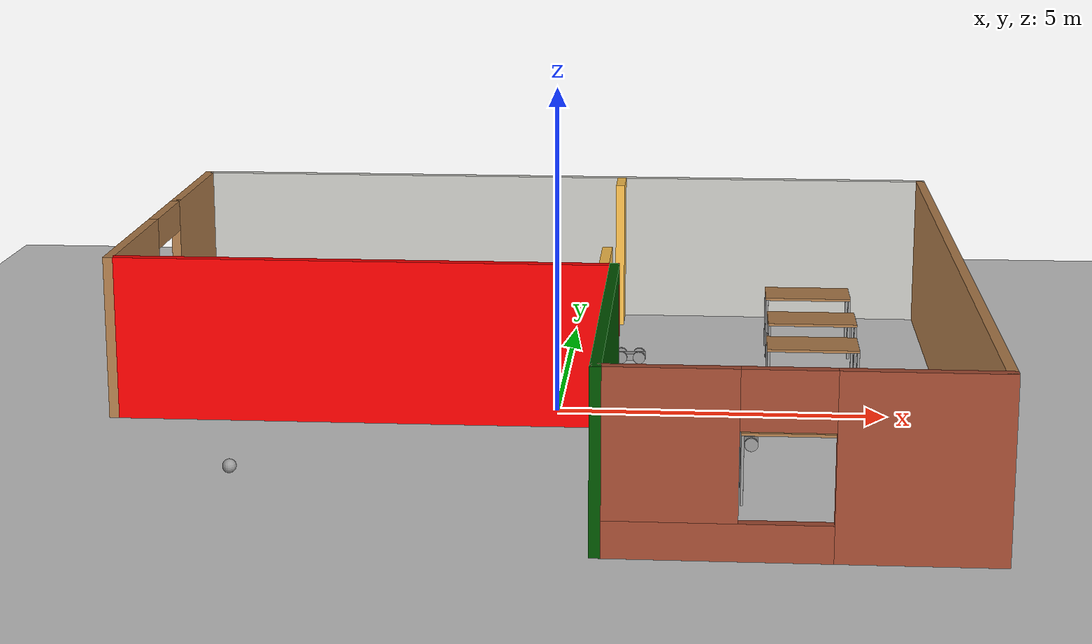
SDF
<sdf version="1.6">
 <world name="default">
  <plugin name="hello" filename="libhello.so"/>
  <light name="sun" type="directional">
   <pose>0 0 10 0 -0 0</pose>
   <diffuse>0.8 0.8 0.8 1</diffuse>
   <specular>0.1 0.1 0.1 1</specular>
   <attenuation>
    <range>1000</range>
    <constant>0.9</constant>
    <linear>0.01</linear>
    <quadratic>0.001</quadratic>
   </attenuation>
   <direction>-0.5 0.5 -1</direction>
  </light>
  <model name="ground_plane">
   <static>1</static>
   <link name="link">
    <collision name="collision">
     <geometry><plane><normal>0 0 1</normal><size>100 100</size></plane></geometry>
     <surface><friction><ode><mu>100</mu><mu2>50</mu2></ode></friction></surface>
    </collision>
    <visual name="visual">
     <cast_shadows>0</cast_shadows>
     <geometry><plane><normal>0 0 1</normal><size>100 100</size></plane></geometry>
     <material>
      <script><uri>file://media/materials/scripts/gazebo.material</uri><name>Gazebo/Grey</name></script>
     </material>
    </visual>
   </link>
  </model>
  <gravity>0 0 -9.8</gravity>
  <magnetic_field>6e-06 2.3e-05 -4.2e-05</magnetic_field>
  <atmosphere type="adiabatic"/>
  <physics name="default_physics" default="0" type="ode">
   <max_step_size>0.001</max_step_size>
   <real_time_factor>1</real_time_factor>
   <real_time_update_rate>1000</real_time_update_rate>
  </physics>
  <scene><ambient>0.4 0.4 0.4 1</ambient><background>0.7 0.7 0.7 1</background><shadows>1</shadows></scene>
  <spherical_coordinates>
   <surface_model>EARTH_WGS84</surface_model>
   <latitude_deg>0</latitude_deg>
   <longitude_deg>0</longitude_deg>
   <elevation>0</elevation>
   <heading_deg>0</heading_deg>
  </spherical_coordinates>
  <model name="table">
   <static>0</static>
   <link name="link">
    <collision name="surface">
     <pose>0 0 1 0 -0 0</pose>
     <geometry><box><size>1.5 0.8 0.03</size></box></geometry>
     <surface><friction><ode><mu>0.6</mu><mu2>0.6</mu2></ode></friction></surface>
    </collision>
    <visual name="visual1">
     <pose>0 0 1 0 -0 0</pose>
     <geometry><box><size>1.4 0.8 0.04</size></box></geometry>
     <material>
      <script><uri>file://media/materials/scripts/gazebo.material</uri><name>Gazebo/Wood</name></script>
     </material>
    </visual>
    <collision name="front_left_leg">
     <pose>0.68 0.38 0.5 0 -0 0</pose>
     <geometry><cylinder><radius>0.02</radius><length>1</length></cylinder></geometry>
    </collision>
    <visual name="front_left_leg">
     <pose>0.68 0.38 0.5 0 -0 0</pose>
     <geometry><cylinder><radius>0.02</radius><length>1</length></cylinder></geometry>
     <material>
      <script><uri>file://media/materials/scripts/gazebo.material</uri><name>Gazebo/Grey</name></script>
     </material>
    </visual>
    <collision name="front_right_leg">
     <pose>0.68 -0.38 0.5 0 -0 0</pose>
     <geometry><cylinder><radius>0.02</radius><length>1</length></cylinder></geometry>
    </collision>
    <visual name="front_right_leg">
     <pose>0.68 -0.38 0.5 0 -0 0</pose>
     <geometry><cylinder><radius>0.02</radius><length>1</length></cylinder></geometry>
     <material>
      <script><uri>file://media/materials/scripts/gazebo.material</uri><name>Gazebo/Grey</name></script>
     </material>
    </visual>
    <collision name="back_right_leg">
     <pose>-0.68 -0.38 0.5 0 -0 0</pose>
     <geometry><cylinder><radius>0.02</radius><length>1</length></cylinder></geometry>
    </collision>
    <visual name="back_right_leg">
     <pose>-0.68 -0.38 0.5 0 -0 0</pose>
     <geometry><cylinder><radius>0.02</radius><length>1</length></cylinder></geometry>
     <material>
      <script><uri>file://media/materials/scripts/gazebo.material</uri><name>Gazebo/Grey</name></script>
     </material>
    </visual>
    <collision name="back_left_leg">
     <pose>-0.68 0.38 0.5 0 -0 0</pose>
     <geometry><cylinder><radius>0.02</radius><length>1</length></cylinder></geometry>
    </collision>
    <visual name="back_left_leg">
     <pose>-0.68 0.38 0.5 0 -0 0</pose>
     <geometry><cylinder><radius>0.02</radius><length>1</length></cylinder></geometry>
     <material>
      <script><uri>file://media/materials/scripts/gazebo.material</uri><name>Gazebo/Grey</name></script>
     </material>
    </visual>
    <inertial>
     <inertia><ixx>1</ixx><ixy>0</ixy><ixz>0</ixz><iyy>1</iyy><iyz>0</iyz><izz>1</izz></inertia>
     <mass>1</mass>
    </inertial>
   </link>
   <pose>3.95275 3.76736 -8e-06 0 -2e-06 0</pose>
  </model>
  <model name="table_clone">
   <static>0</static>
   <link name="link">
    <collision name="surface">
     <pose>0 0 1 0 -0 0</pose>
     <geometry><box><size>1.5 0.8 0.03</size></box></geometry>
     <surface><friction><ode><mu>0.6</mu><mu2>0.6</mu2></ode></friction></surface>
    </collision>
    <visual name="visual1">
     <pose>0 0 1 0 -0 0</pose>
     <geometry><box><size>1.4 0.8 0.04</size></box></geometry>
     <material>
      <script><uri>file://media/materials/scripts/gazebo.material</uri><name>Gazebo/Wood</name></script>
     </material>
    </visual>
    <collision name="front_left_leg">
     <pose>0.68 0.38 0.5 0 -0 0</pose>
     <geometry><cylinder><radius>0.02</radius><length>1</length></cylinder></geometry>
    </collision>
    <visual name="front_left_leg">
     <pose>0.68 0.38 0.5 0 -0 0</pose>
     <geometry><cylinder><radius>0.02</radius><length>1</length></cylinder></geometry>
     <material>
      <script><uri>file://media/materials/scripts/gazebo.material</uri><name>Gazebo/Grey</name></script>
     </material>
    </visual>
    <collision name="front_right_leg">
     <pose>0.68 -0.38 0.5 0 -0 0</pose>
     <geometry><cylinder><radius>0.02</radius><length>1</length></cylinder></geometry>
    </collision>
    <visual name="front_right_leg">
     <pose>0.68 -0.38 0.5 0 -0 0</pose>
     <geometry><cylinder><radius>0.02</radius><length>1</length></cylinder></geometry>
     <material>
      <script><uri>file://media/materials/scripts/gazebo.material</uri><name>Gazebo/Grey</name></script>
     </material>
    </visual>
    <collision name="back_right_leg">
     <pose>-0.68 -0.38 0.5 0 -0 0</pose>
     <geometry><cylinder><radius>0.02</radius><length>1</length></cylinder></geometry>
    </collision>
    <visual name="back_right_leg">
     <pose>-0.68 -0.38 0.5 0 -0 0</pose>
     <geometry><cylinder><radius>0.02</radius><length>1</length></cylinder></geometry>
     <material>
      <script><uri>file://media/materials/scripts/gazebo.material</uri><name>Gazebo/Grey</name></script>
     </material>
    </visual>
    <collision name="back_left_leg">
     <pose>-0.68 0.38 0.5 0 -0 0</pose>
     <geometry><cylinder><radius>0.02</radius><length>1</length></cylinder></geometry>
    </collision>
    <visual name="back_left_leg">
     <pose>-0.68 0.38 0.5 0 -0 0</pose>
     <geometry><cylinder><radius>0.02</radius><length>1</length></cylinder></geometry>
     <material>
      <script><uri>file://media/materials/scripts/gazebo.material</uri><name>Gazebo/Grey</name></script>
     </material>
    </visual>
    <inertial>
     <inertia><ixx>1</ixx><ixy>0</ixy><ixz>0</ixz><iyy>1</iyy><iyz>0</iyz><izz>1</izz></inertia>
     <mass>1</mass>
    </inertial>
   </link>
   <pose>3.95122 2.05572 -1e-06 0 1e-06 0</pose>
  </model>
  <model name="table_clone_0">
   <static>0</static>
   <link name="link">
    <collision name="surface">
     <pose>0 0 1 0 -0 0</pose>
     <geometry><box><size>1.5 0.8 0.03</size></box></geometry>
     <surface><friction><ode><mu>0.6</mu><mu2>0.6</mu2></ode></friction></surface>
    </collision>
    <visual name="visual1">
     <pose>0 0 1 0 -0 0</pose>
     <geometry><box><size>1.4 0.8 0.04</size></box></geometry>
     <material>
      <script><uri>file://media/materials/scripts/gazebo.material</uri><name>Gazebo/Wood</name></script>
     </material>
    </visual>
    <collision name="front_left_leg">
     <pose>0.68 0.38 0.5 0 -0 0</pose>
     <geometry><cylinder><radius>0.02</radius><length>1</length></cylinder></geometry>
    </collision>
    <visual name="front_left_leg">
     <pose>0.68 0.38 0.5 0 -0 0</pose>
     <geometry><cylinder><radius>0.02</radius><length>1</length></cylinder></geometry>
     <material>
      <script><uri>file://media/materials/scripts/gazebo.material</uri><name>Gazebo/Grey</name></script>
     </material>
    </visual>
    <collision name="front_right_leg">
     <pose>0.68 -0.38 0.5 0 -0 0</pose>
     <geometry><cylinder><radius>0.02</radius><length>1</length></cylinder></geometry>
    </collision>
    <visual name="front_right_leg">
     <pose>0.68 -0.38 0.5 0 -0 0</pose>
     <geometry><cylinder><radius>0.02</radius><length>1</length></cylinder></geometry>
     <material>
      <script><uri>file://media/materials/scripts/gazebo.material</uri><name>Gazebo/Grey</name></script>
     </material>
    </visual>
    <collision name="back_right_leg">
     <pose>-0.68 -0.38 0.5 0 -0 0</pose>
     <geometry><cylinder><radius>0.02</radius><length>1</length></cylinder></geometry>
    </collision>
    <visual name="back_right_leg">
     <pose>-0.68 -0.38 0.5 0 -0 0</pose>
     <geometry><cylinder><radius>0.02</radius><length>1</length></cylinder></geometry>
     <material>
      <script><uri>file://media/materials/scripts/gazebo.material</uri><name>Gazebo/Grey</name></script>
     </material>
    </visual>
    <collision name="back_left_leg">
     <pose>-0.68 0.38 0.5 0 -0 0</pose>
     <geometry><cylinder><radius>0.02</radius><length>1</length></cylinder></geometry>
    </collision>
    <visual name="back_left_leg">
     <pose>-0.68 0.38 0.5 0 -0 0</pose>
     <geometry><cylinder><radius>0.02</radius><length>1</length></cylinder></geometry>
     <material>
      <script><uri>file://media/materials/scripts/gazebo.material</uri><name>Gazebo/Grey</name></script>
     </material>
    </visual>
    <inertial>
     <inertia><ixx>1</ixx><ixy>0</ixy><ixz>0</ixz><iyy>1</iyy><iyz>0</iyz><izz>1</izz></inertia>
     <mass>1</mass>
    </inertial>
   </link>
   <pose>3.89737 0.456338 -3e-06 1e-06 -0 0</pose>
  </model>
  <model name="table_clone_1">
   <static>0</static>
   <link name="link">
    <collision name="surface">
     <pose>0 0 1 0 -0 0</pose>
     <geometry><box><size>1.5 0.8 0.03</size></box></geometry>
     <surface><friction><ode><mu>0.6</mu><mu2>0.6</mu2></ode></friction></surface>
    </collision>
    <visual name="visual1">
     <pose>0 0 1 0 -0 0</pose>
     <geometry><box><size>1.4 0.8 0.04</size></box></geometry>
     <material>
      <script><uri>file://media/materials/scripts/gazebo.material</uri><name>Gazebo/Wood</name></script>
     </material>
    </visual>
    <collision name="front_left_leg">
     <pose>0.68 0.38 0.5 0 -0 0</pose>
     <geometry><cylinder><radius>0.02</radius><length>1</length></cylinder></geometry>
    </collision>
    <visual name="front_left_leg">
     <pose>0.68 0.38 0.5 0 -0 0</pose>
     <geometry><cylinder><radius>0.02</radius><length>1</length></cylinder></geometry>
     <material>
      <script><uri>file://media/materials/scripts/gazebo.material</uri><name>Gazebo/Grey</name></script>
     </material>
    </visual>
    <collision name="front_right_leg">
     <pose>0.68 -0.38 0.5 0 -0 0</pose>
     <geometry><cylinder><radius>0.02</radius><length>1</length></cylinder></geometry>
    </collision>
    <visual name="front_right_leg">
     <pose>0.68 -0.38 0.5 0 -0 0</pose>
     <geometry><cylinder><radius>0.02</radius><length>1</length></cylinder></geometry>
     <material>
      <script><uri>file://media/materials/scripts/gazebo.material</uri><name>Gazebo/Grey</name></script>
     </material>
    </visual>
    <collision name="back_right_leg">
     <pose>-0.68 -0.38 0.5 0 -0 0</pose>
     <geometry><cylinder><radius>0.02</radius><length>1</length></cylinder></geometry>
    </collision>
    <visual name="back_right_leg">
     <pose>-0.68 -0.38 0.5 0 -0 0</pose>
     <geometry><cylinder><radius>0.02</radius><length>1</length></cylinder></geometry>
     <material>
      <script><uri>file://media/materials/scripts/gazebo.material</uri><name>Gazebo/Grey</name></script>
     </material>
    </visual>
    <collision name="back_left_leg">
     <pose>-0.68 0.38 0.5 0 -0 0</pose>
     <geometry><cylinder><radius>0.02</radius><length>1</length></cylinder></geometry>
    </collision>
    <visual name="back_left_leg">
     <pose>-0.68 0.38 0.5 0 -0 0</pose>
     <geometry><cylinder><radius>0.02</radius><length>1</length></cylinder></geometry>
     <material>
      <script><uri>file://media/materials/scripts/gazebo.material</uri><name>Gazebo/Grey</name></script>
     </material>
    </visual>
    <inertial>
     <inertia><ixx>1</ixx><ixy>0</ixy><ixz>0</ixz><iyy>1</iyy><iyz>0</iyz><izz>1</izz></inertia>
     <mass>1</mass>
    </inertial>
   </link>
   <pose>3.444 -3.89726 0 0 -0 0</pose>
  </model>
  <model name="table_clone_1_clone">
   <static>0</static>
   <link name="link">
    <collision name="surface">
     <pose>0 0 1 0 -0 0</pose>
     <geometry><box><size>1.5 0.8 0.03</size></box></geometry>
     <surface><friction><ode><mu>0.6</mu><mu2>0.6</mu2></ode></friction></surface>
    </collision>
    <visual name="visual1">
     <pose>0 0 1 0 -0 0</pose>
     <geometry><box><size>1.4 0.8 0.04</size></box></geometry>
     <material>
      <script><uri>file://media/materials/scripts/gazebo.material</uri><name>Gazebo/Wood</name></script>
     </material>
    </visual>
    <collision name="front_left_leg">
     <pose>0.68 0.38 0.5 0 -0 0</pose>
     <geometry><cylinder><radius>0.02</radius><length>1</length></cylinder></geometry>
    </collision>
    <visual name="front_left_leg">
     <pose>0.68 0.38 0.5 0 -0 0</pose>
     <geometry><cylinder><radius>0.02</radius><length>1</length></cylinder></geometry>
     <material>
      <script><uri>file://media/materials/scripts/gazebo.material</uri><name>Gazebo/Grey</name></script>
     </material>
    </visual>
    <collision name="front_right_leg">
     <pose>0.68 -0.38 0.5 0 -0 0</pose>
     <geometry><cylinder><radius>0.02</radius><length>1</length></cylinder></geometry>
    </collision>
    <visual name="front_right_leg">
     <pose>0.68 -0.38 0.5 0 -0 0</pose>
     <geometry><cylinder><radius>0.02</radius><length>1</length></cylinder></geometry>
     <material>
      <script><uri>file://media/materials/scripts/gazebo.material</uri><name>Gazebo/Grey</name></script>
     </material>
    </visual>
    <collision name="back_right_leg">
     <pose>-0.68 -0.38 0.5 0 -0 0</pose>
     <geometry><cylinder><radius>0.02</radius><length>1</length></cylinder></geometry>
    </collision>
    <visual name="back_right_leg">
     <pose>-0.68 -0.38 0.5 0 -0 0</pose>
     <geometry><cylinder><radius>0.02</radius><length>1</length></cylinder></geometry>
     <material>
      <script><uri>file://media/materials/scripts/gazebo.material</uri><name>Gazebo/Grey</name></script>
     </material>
    </visual>
    <collision name="back_left_leg">
     <pose>-0.68 0.38 0.5 0 -0 0</pose>
     <geometry><cylinder><radius>0.02</radius><length>1</length></cylinder></geometry>
    </collision>
    <visual name="back_left_leg">
     <pose>-0.68 0.38 0.5 0 -0 0</pose>
     <geometry><cylinder><radius>0.02</radius><length>1</length></cylinder></geometry>
     <material>
      <script><uri>file://media/materials/scripts/gazebo.material</uri><name>Gazebo/Grey</name></script>
     </material>
    </visual>
    <inertial>
     <inertia><ixx>1</ixx><ixy>0</ixy><ixz>0</ixz><iyy>1</iyy><iyz>0</iyz><izz>1</izz></inertia>
     <mass>1</mass>
    </inertial>
   </link>
   <pose>5.17977 -5.41174 0.007377 0 -0.010539 -4e-06</pose>
  </model>
  <model name="table_clone_0_clone">
   <static>0</static>
   <link name="link">
    <collision name="surface">
     <pose>0 0 1 0 -0 0</pose>
     <geometry><box><size>1.5 0.8 0.03</size></box></geometry>
     <surface><friction><ode><mu>0.6</mu><mu2>0.6</mu2></ode></friction></surface>
    </collision>
    <visual name="visual1">
     <pose>0 0 1 0 -0 0</pose>
     <geometry><box><size>1.4 0.8 0.04</size></box></geometry>
     <material>
      <script><uri>file://media/materials/scripts/gazebo.material</uri><name>Gazebo/Wood</name></script>
     </material>
    </visual>
    <collision name="front_left_leg">
     <pose>0.68 0.38 0.5 0 -0 0</pose>
     <geometry><cylinder><radius>0.02</radius><length>1</length></cylinder></geometry>
    </collision>
    <visual name="front_left_leg">
     <pose>0.68 0.38 0.5 0 -0 0</pose>
     <geometry><cylinder><radius>0.02</radius><length>1</length></cylinder></geometry>
     <material>
      <script><uri>file://media/materials/scripts/gazebo.material</uri><name>Gazebo/Grey</name></script>
     </material>
    </visual>
    <collision name="front_right_leg">
     <pose>0.68 -0.38 0.5 0 -0 0</pose>
     <geometry><cylinder><radius>0.02</radius><length>1</length></cylinder></geometry>
    </collision>
    <visual name="front_right_leg">
     <pose>0.68 -0.38 0.5 0 -0 0</pose>
     <geometry><cylinder><radius>0.02</radius><length>1</length></cylinder></geometry>
     <material>
      <script><uri>file://media/materials/scripts/gazebo.material</uri><name>Gazebo/Grey</name></script>
     </material>
    </visual>
    <collision name="back_right_leg">
     <pose>-0.68 -0.38 0.5 0 -0 0</pose>
     <geometry><cylinder><radius>0.02</radius><length>1</length></cylinder></geometry>
    </collision>
    <visual name="back_right_leg">
     <pose>-0.68 -0.38 0.5 0 -0 0</pose>
     <geometry><cylinder><radius>0.02</radius><length>1</length></cylinder></geometry>
     <material>
      <script><uri>file://media/materials/scripts/gazebo.material</uri><name>Gazebo/Grey</name></script>
     </material>
    </visual>
    <collision name="back_left_leg">
     <pose>-0.68 0.38 0.5 0 -0 0</pose>
     <geometry><cylinder><radius>0.02</radius><length>1</length></cylinder></geometry>
    </collision>
    <visual name="back_left_leg">
     <pose>-0.68 0.38 0.5 0 -0 0</pose>
     <geometry><cylinder><radius>0.02</radius><length>1</length></cylinder></geometry>
     <material>
      <script><uri>file://media/materials/scripts/gazebo.material</uri><name>Gazebo/Grey</name></script>
     </material>
    </visual>
    <inertial>
     <inertia><ixx>1</ixx><ixy>0</ixy><ixz>0</ixz><iyy>1</iyy><iyz>0</iyz><izz>1</izz></inertia>
     <mass>1</mass>
    </inertial>
   </link>
   <pose>-3.41119 2.22662 -1e-06 0 1e-06 0</pose>
  </model>
  <model name="4wheel_small">
   <link name="link_0">
    <inertial>
     <mass>0.161541</mass>
     <inertia>
      <ixx>0.00544895</ixx>
      <ixy>0</ixy>
      <ixz>0</ixz>
      <iyy>0.014545</iyy>
      <iyz>0</iyz>
      <izz>0.0178275</izz>
     </inertia>
    </inertial>
    <visual name="visual">
     <geometry><box><size>0.5 0.2 0.1</size></box></geometry>
     <material>
      <lighting>1</lighting>
      <script><uri>file://media/materials/scripts/gazebo.material</uri><name>Gazebo/Grey</name></script>
      <ambient>0.3 0.3 0.3 1</ambient>
      <diffuse>0.7 0.7 0.7 1</diffuse>
      <specular>0.01 0.01 0.01 1</specular>
      <emissive>0 0 0 1</emissive>
      <shader type="vertex"><normal_map>__default__</normal_map></shader>
     </material>
    </visual>
    <collision name="collision">
     <geometry><box><size>0.5 0.2 0.1</size></box></geometry>
     <surface>
      <friction>
       <ode><mu>1</mu><mu2>1</mu2><fdir1>0 0 0</fdir1><slip1>0</slip1><slip2>0</slip2></ode>
       <torsional>
        <coefficient>1</coefficient>
        <patch_radius>0</patch_radius>
        <surface_radius>0</surface_radius>
        <use_patch_radius>1</use_patch_radius>
        <ode><slip>0</slip></ode>
       </torsional>
      </friction>
      <bounce><restitution_coefficient>0</restitution_coefficient><threshold>1e+06</threshold></bounce>
      <contact>
       <collide_without_contact>0</collide_without_contact>
       <collide_without_contact_bitmask>1</collide_without_contact_bitmask>
       <collide_bitmask>1</collide_bitmask>
       <ode>
        <soft_cfm>0</soft_cfm>
        <soft_erp>0.2</soft_erp>
        <kp>1e+13</kp>
        <kd>1</kd>
        <max_vel>0.01</max_vel>
        <min_depth>0</min_depth>
       </ode>
       <bullet>
        <split_impulse>1</split_impulse>
        <split_impulse_penetration_threshold>-0.01</split_impulse_penetration_threshold>
        <soft_cfm>0</soft_cfm>
        <soft_erp>0.2</soft_erp>
        <kp>1e+13</kp>
        <kd>1</kd>
       </bullet>
      </contact>
     </surface>
    </collision>
   </link>
   <link name="link_1">
    <pose>0.15 -0.12501 0 1.5707 -0 0</pose>
    <inertial>
     <mass>1</mass>
     <inertia><ixx>0.145833</ixx><ixy>0</ixy><ixz>0</ixz><iyy>0.145833</iyy><iyz>0</iyz><izz>0.125</izz></inertia>
    </inertial>
    <visual name="visual">
     <geometry><cylinder><radius>0.1</radius><length>0.05</length></cylinder></geometry>
     <material>
      <lighting>1</lighting>
      <script><uri>file://media/materials/scripts/gazebo.material</uri><name>Gazebo/Grey</name></script>
      <ambient>0.3 0.3 0.3 1</ambient>
      <diffuse>0.7 0.7 0.7 1</diffuse>
      <specular>0.01 0.01 0.01 1</specular>
      <emissive>0 0 0 1</emissive>
      <shader type="vertex"><normal_map>__default__</normal_map></shader>
     </material>
    </visual>
    <collision name="collision">
     <geometry><cylinder><radius>0.1</radius><length>0.05</length></cylinder></geometry>
     <surface>
      <friction>
       <ode><mu>1</mu><mu2>1</mu2><fdir1>0 0 0</fdir1><slip1>0</slip1><slip2>0</slip2></ode>
       <torsional>
        <coefficient>1</coefficient>
        <patch_radius>0</patch_radius>
        <surface_radius>0</surface_radius>
        <use_patch_radius>1</use_patch_radius>
        <ode><slip>0</slip></ode>
       </torsional>
      </friction>
      <bounce><restitution_coefficient>0</restitution_coefficient><threshold>1e+06</threshold></bounce>
      <contact>
       <collide_without_contact>0</collide_without_contact>
       <collide_without_contact_bitmask>1</collide_without_contact_bitmask>
       <collide_bitmask>1</collide_bitmask>
       <ode>
        <soft_cfm>0</soft_cfm>
        <soft_erp>0.2</soft_erp>
        <kp>1e+13</kp>
        <kd>1</kd>
        <max_vel>0.01</max_vel>
        <min_depth>0</min_depth>
       </ode>
       <bullet>
        <split_impulse>1</split_impulse>
        <split_impulse_penetration_threshold>-0.01</split_impulse_penetration_threshold>
        <soft_cfm>0</soft_cfm>
        <soft_erp>0.2</soft_erp>
        <kp>1e+13</kp>
        <kd>1</kd>
       </bullet>
      </contact>
     </surface>
    </collision>
   </link>
   <link name="link_1_clone">
    <pose>0.15 0.12501 0 1.5707 -0 0</pose>
    <inertial>
     <mass>1</mass>
     <inertia><ixx>0.145833</ixx><ixy>0</ixy><ixz>0</ixz><iyy>0.145833</iyy><iyz>0</iyz><izz>0.125</izz></inertia>
    </inertial>
    <visual name="visual">
     <geometry><cylinder><radius>0.1</radius><length>0.05</length></cylinder></geometry>
     <material>
      <lighting>1</lighting>
      <script><uri>file://media/materials/scripts/gazebo.material</uri><name>Gazebo/Grey</name></script>
      <ambient>0.3 0.3 0.3 1</ambient>
      <diffuse>0.7 0.7 0.7 1</diffuse>
      <specular>0.01 0.01 0.01 1</specular>
      <emissive>0 0 0 1</emissive>
      <shader type="vertex"><normal_map>__default__</normal_map></shader>
     </material>
    </visual>
    <collision name="collision">
     <geometry><cylinder><radius>0.1</radius><length>0.05</length></cylinder></geometry>
     <surface>
      <friction>
       <ode><mu>1</mu><mu2>1</mu2><fdir1>0 0 0</fdir1><slip1>0</slip1><slip2>0</slip2></ode>
       <torsional>
        <coefficient>1</coefficient>
        <patch_radius>0</patch_radius>
        <surface_radius>0</surface_radius>
        <use_patch_radius>1</use_patch_radius>
        <ode><slip>0</slip></ode>
       </torsional>
      </friction>
      <bounce><restitution_coefficient>0</restitution_coefficient><threshold>1e+06</threshold></bounce>
      <contact>
       <collide_without_contact>0</collide_without_contact>
       <collide_without_contact_bitmask>1</collide_without_contact_bitmask>
       <collide_bitmask>1</collide_bitmask>
       <ode>
        <soft_cfm>0</soft_cfm>
        <soft_erp>0.2</soft_erp>
        <kp>1e+13</kp>
        <kd>1</kd>
        <max_vel>0.01</max_vel>
        <min_depth>0</min_depth>
       </ode>
       <bullet>
        <split_impulse>1</split_impulse>
        <split_impulse_penetration_threshold>-0.01</split_impulse_penetration_threshold>
        <soft_cfm>0</soft_cfm>
        <soft_erp>0.2</soft_erp>
        <kp>1e+13</kp>
        <kd>1</kd>
       </bullet>
      </contact>
     </surface>
    </collision>
   </link>
   <link name="link_1_clone_clone">
    <pose>-0.15 0.12501 0 1.5707 -0 0</pose>
    <inertial>
     <mass>1</mass>
     <inertia><ixx>0.145833</ixx><ixy>0</ixy><ixz>0</ixz><iyy>0.145833</iyy><iyz>0</iyz><izz>0.125</izz></inertia>
    </inertial>
    <visual name="visual">
     <geometry><cylinder><radius>0.1</radius><length>0.05</length></cylinder></geometry>
     <material>
      <lighting>1</lighting>
      <script><uri>file://media/materials/scripts/gazebo.material</uri><name>Gazebo/Grey</name></script>
      <ambient>0.3 0.3 0.3 1</ambient>
      <diffuse>0.7 0.7 0.7 1</diffuse>
      <specular>0.01 0.01 0.01 1</specular>
      <emissive>0 0 0 1</emissive>
      <shader type="vertex"><normal_map>__default__</normal_map></shader>
     </material>
    </visual>
    <collision name="collision">
     <geometry><cylinder><radius>0.1</radius><length>0.05</length></cylinder></geometry>
     <surface>
      <friction>
       <ode><mu>1</mu><mu2>1</mu2><fdir1>0 0 0</fdir1><slip1>0</slip1><slip2>0</slip2></ode>
       <torsional>
        <coefficient>1</coefficient>
        <patch_radius>0</patch_radius>
        <surface_radius>0</surface_radius>
        <use_patch_radius>1</use_patch_radius>
        <ode><slip>0</slip></ode>
       </torsional>
      </friction>
      <bounce><restitution_coefficient>0</restitution_coefficient><threshold>1e+06</threshold></bounce>
      <contact>
       <collide_without_contact>0</collide_without_contact>
       <collide_without_contact_bitmask>1</collide_without_contact_bitmask>
       <collide_bitmask>1</collide_bitmask>
       <ode>
        <soft_cfm>0</soft_cfm>
        <soft_erp>0.2</soft_erp>
        <kp>1e+13</kp>
        <kd>1</kd>
        <max_vel>0.01</max_vel>
        <min_depth>0</min_depth>
       </ode>
       <bullet>
        <split_impulse>1</split_impulse>
        <split_impulse_penetration_threshold>-0.01</split_impulse_penetration_threshold>
        <soft_cfm>0</soft_cfm>
        <soft_erp>0.2</soft_erp>
        <kp>1e+13</kp>
        <kd>1</kd>
       </bullet>
      </contact>
     </surface>
    </collision>
   </link>
   <link name="link_1_clone_clone_clone">
    <pose>-0.15 -0.12501 0 1.5707 -0 0</pose>
    <inertial>
     <mass>1</mass>
     <inertia><ixx>0.145833</ixx><ixy>0</ixy><ixz>0</ixz><iyy>0.145833</iyy><iyz>0</iyz><izz>0.125</izz></inertia>
    </inertial>
    <visual name="visual">
     <geometry><cylinder><radius>0.1</radius><length>0.05</length></cylinder></geometry>
     <material>
      <lighting>1</lighting>
      <script><uri>file://media/materials/scripts/gazebo.material</uri><name>Gazebo/Grey</name></script>
      <ambient>0.3 0.3 0.3 1</ambient>
      <diffuse>0.7 0.7 0.7 1</diffuse>
      <specular>0.01 0.01 0.01 1</specular>
      <emissive>0 0 0 1</emissive>
      <shader type="vertex"><normal_map>__default__</normal_map></shader>
     </material>
    </visual>
    <collision name="collision">
     <geometry><cylinder><radius>0.1</radius><length>0.05</length></cylinder></geometry>
     <surface>
      <friction>
       <ode><mu>1</mu><mu2>1</mu2><fdir1>0 0 0</fdir1><slip1>0</slip1><slip2>0</slip2></ode>
       <torsional>
        <coefficient>1</coefficient>
        <patch_radius>0</patch_radius>
        <surface_radius>0</surface_radius>
        <use_patch_radius>1</use_patch_radius>
        <ode><slip>0</slip></ode>
       </torsional>
      </friction>
      <bounce><restitution_coefficient>0</restitution_coefficient><threshold>1e+06</threshold></bounce>
      <contact>
       <collide_without_contact>0</collide_without_contact>
       <collide_without_contact_bitmask>1</collide_without_contact_bitmask>
       <collide_bitmask>1</collide_bitmask>
       <ode>
        <soft_cfm>0</soft_cfm>
        <soft_erp>0.2</soft_erp>
        <kp>1e+13</kp>
        <kd>1</kd>
        <max_vel>0.01</max_vel>
        <min_depth>0</min_depth>
       </ode>
       <bullet>
        <split_impulse>1</split_impulse>
        <split_impulse_penetration_threshold>-0.01</split_impulse_penetration_threshold>
        <soft_cfm>0</soft_cfm>
        <soft_erp>0.2</soft_erp>
        <kp>1e+13</kp>
        <kd>1</kd>
       </bullet>
      </contact>
     </surface>
    </collision>
   </link>
   <joint name="link_0_JOINT_0" type="revolute">
    <parent>link_0</parent>
    <child>link_1</child>
    <axis>
     <xyz>0 0 1</xyz>
     <use_parent_model_frame>0</use_parent_model_frame>
     <limit>
      <lower>-1.79769e+308</lower>
      <upper>1.79769e+308</upper>
      <effort>-1</effort>
      <velocity>-1</velocity>
     </limit>
     <dynamics>
      <spring_reference>0</spring_reference>
      <spring_stiffness>0</spring_stiffness>
      <damping>0</damping>
     </dynamics>
    </axis>
    <physics>
     <ode><limit><cfm>0</cfm><erp>0.2</erp></limit><suspension><cfm>0</cfm><erp>0.2</erp></suspension></ode>
    </physics>
   </joint>
   <joint name="link_0_JOINT_1" type="revolute">
    <parent>link_0</parent>
    <child>link_1_clone</child>
    <axis>
     <xyz>0 0 1</xyz>
     <use_parent_model_frame>0</use_parent_model_frame>
     <limit>
      <lower>-1.79769e+308</lower>
      <upper>1.79769e+308</upper>
      <effort>-1</effort>
      <velocity>-1</velocity>
     </limit>
     <dynamics>
      <spring_reference>0</spring_reference>
      <spring_stiffness>0</spring_stiffness>
      <damping>0</damping>
     </dynamics>
    </axis>
    <physics>
     <ode><limit><cfm>0</cfm><erp>0.2</erp></limit><suspension><cfm>0</cfm><erp>0.2</erp></suspension></ode>
    </physics>
   </joint>
   <joint name="link_0_JOINT_2" type="revolute">
    <parent>link_0</parent>
    <child>link_1_clone_clone</child>
    <axis>
     <xyz>0 0 1</xyz>
     <use_parent_model_frame>0</use_parent_model_frame>
     <limit>
      <lower>-1.79769e+308</lower>
      <upper>1.79769e+308</upper>
      <effort>-1</effort>
      <velocity>-1</velocity>
     </limit>
     <dynamics>
      <spring_reference>0</spring_reference>
      <spring_stiffness>0</spring_stiffness>
      <damping>0</damping>
     </dynamics>
    </axis>
    <physics>
     <ode><limit><cfm>0</cfm><erp>0.2</erp></limit><suspension><cfm>0</cfm><erp>0.2</erp></suspension></ode>
    </physics>
   </joint>
   <joint name="link_0_JOINT_3" type="revolute">
    <parent>link_0</parent>
    <child>link_1_clone_clone_clone</child>
    <axis>
     <xyz>0 0 1</xyz>
     <use_parent_model_frame>0</use_parent_model_frame>
     <limit>
      <lower>-1.79769e+308</lower>
      <upper>1.79769e+308</upper>
      <effort>-1</effort>
      <velocity>-1</velocity>
     </limit>
     <dynamics>
      <spring_reference>0</spring_reference>
      <spring_stiffness>0</spring_stiffness>
      <damping>0</damping>
     </dynamics>
    </axis>
    <physics>
     <ode><limit><cfm>0</cfm><erp>0.2</erp></limit><suspension><cfm>0</cfm><erp>0.2</erp></suspension></ode>
    </physics>
   </joint>
   <static>0</static>
   <pose>1.01356 2.94851 0.100003 3e-06 -0 0.012566</pose>
  </model>
  <model name="simple_house">
   <pose>-0.355628 -0.08626 0 0 -0 0</pose>
   <link name="Wall_0">
    <collision name="Wall_0_Collision">
     <geometry><box><size>12.75 0.15 2.5</size></box></geometry>
     <pose>0 0 1.25 0 -0 0</pose>
    </collision>
    <visual name="Wall_0_Visual">
     <pose>0 0 1.25 0 -0 0</pose>
     <geometry><box><size>12.75 0.15 2.5</size></box></geometry>
     <material>
      <script><uri>file://media/materials/scripts/gazebo.material</uri><name>Gazebo/CeilingTiled</name></script>
      <ambient>1 1 1 1</ambient>
     </material>
    </visual>
    <pose>0.05 6.3 0 0 -0 0</pose>
   </link>
   <link name="Wall_1">
    <collision name="Wall_1_Collision">
     <geometry><box><size>12.75 0.15 2.5</size></box></geometry>
     <pose>0 0 1.25 0 -0 0</pose>
    </collision>
    <visual name="Wall_1_Visual">
     <pose>0 0 1.25 0 -0 0</pose>
     <geometry><box><size>12.75 0.15 2.5</size></box></geometry>
     <material>
      <script><uri>file://media/materials/scripts/gazebo.material</uri><name>Gazebo/Wood</name></script>
      <ambient>1 1 1 1</ambient>
     </material>
    </visual>
    <pose>6.35 0 0 0 0 -1.5708</pose>
   </link>
   <link name="Wall_2">
    <pose>3.8 -6.3 0 0 -0 3.14159</pose>
    <visual name="Wall_2_Visual_0">
     <pose>-1.53314 0 1.25 0 -0 0</pose>
     <geometry><box><size>2.18372 0.15 2.5</size></box></geometry>
     <material>
      <script><uri>file://media/materials/scripts/gazebo.material</uri><name>Gazebo/Bricks</name></script>
      <ambient>1 1 1 1</ambient>
     </material>
    </visual>
    <collision name="Wall_2_Collision_0">
     <geometry><box><size>2.18372 0.15 2.5</size></box></geometry>
     <pose>-1.53314 0 1.25 0 -0 0</pose>
    </collision>
    <visual name="Wall_2_Visual_1">
     <pose>1.09186 0 0.25 0 -0 0</pose>
     <geometry><box><size>3.06628 0.15 0.5</size></box></geometry>
     <material>
      <script><uri>file://media/materials/scripts/gazebo.material</uri><name>Gazebo/Bricks</name></script>
      <ambient>1 1 1 1</ambient>
     </material>
    </visual>
    <collision name="Wall_2_Collision_1">
     <geometry><box><size>3.06628 0.15 0.5</size></box></geometry>
     <pose>1.09186 0 0.25 0 -0 0</pose>
    </collision>
    <visual name="Wall_2_Visual_2">
     <pose>1.69186 0 1.5 0 -0 0</pose>
     <geometry><box><size>1.86628 0.15 2</size></box></geometry>
     <material>
      <script><uri>file://media/materials/scripts/gazebo.material</uri><name>Gazebo/Bricks</name></script>
      <ambient>1 1 1 1</ambient>
     </material>
    </visual>
    <collision name="Wall_2_Collision_2">
     <geometry><box><size>1.86628 0.15 2</size></box></geometry>
     <pose>1.69186 0 1.5 0 -0 0</pose>
    </collision>
    <visual name="Wall_2_Visual_3">
     <pose>0.158717 0 2.1 0 -0 0</pose>
     <geometry><box><size>1.2 0.15 0.8</size></box></geometry>
     <material>
      <script><uri>file://media/materials/scripts/gazebo.material</uri><name>Gazebo/Bricks</name></script>
      <ambient>1 1 1 1</ambient>
     </material>
    </visual>
    <collision name="Wall_2_Collision_3">
     <geometry><box><size>1.2 0.15 0.8</size></box></geometry>
     <pose>0.158717 0 2.1 0 -0 0</pose>
    </collision>
   </link>
   <link name="Wall_3">
    <collision name="Wall_3_Collision">
     <geometry><box><size>5.75 0.15 2.5</size></box></geometry>
     <pose>0 0 1.25 0 -0 0</pose>
    </collision>
    <visual name="Wall_3_Visual">
     <pose>0 0 1.25 0 -0 0</pose>
     <geometry><box><size>5.75 0.15 2.5</size></box></geometry>
     <material>
      <script><uri>file://media/materials/scripts/gazebo.material</uri><name>Gazebo/Grey</name></script>
      <ambient>0 0.333333 0 1</ambient>
     </material>
    </visual>
    <pose>1.25 -3.5 0 0 -0 1.5708</pose>
   </link>
   <link name="Wall_4">
    <collision name="Wall_4_Collision">
     <geometry><box><size>7.75 0.15 2.5</size></box></geometry>
     <pose>0 0 1.25 0 -0 0</pose>
    </collision>
    <visual name="Wall_4_Visual">
     <pose>0 0 1.25 0 -0 0</pose>
     <geometry><box><size>7.75 0.15 2.5</size></box></geometry>
     <material>
      <script><uri>file://media/materials/scripts/gazebo.material</uri><name>Gazebo/Grey</name></script>
      <ambient>1 0 0 1</ambient>
     </material>
    </visual>
    <pose>-2.55 -0.7 0 0 -0 3.14159</pose>
   </link>
   <link name="Wall_5">
    <pose>-6.35 1.475 0 0 -0 1.5708</pose>
    <visual name="Wall_5_Visual_0">
     <pose>-0.819987 0 1.25 0 -0 0</pose>
     <geometry><box><size>2.86003 0.15 2.5</size></box></geometry>
     <material>
      <script><uri>file://media/materials/scripts/gazebo.material</uri><name>Gazebo/Wood</name></script>
      <ambient>1 1 1 1</ambient>
     </material>
    </visual>
    <collision name="Wall_5_Collision_0">
     <geometry><box><size>2.86003 0.15 2.5</size></box></geometry>
     <pose>-0.819987 0 1.25 0 -0 0</pose>
    </collision>
    <visual name="Wall_5_Visual_1">
     <pose>1.43001 0 0.25 0 -0 0</pose>
     <geometry><box><size>1.63997 0.15 0.5</size></box></geometry>
     <material>
      <script><uri>file://media/materials/scripts/gazebo.material</uri><name>Gazebo/Wood</name></script>
      <ambient>1 1 1 1</ambient>
     </material>
    </visual>
    <collision name="Wall_5_Collision_1">
     <geometry><box><size>1.63997 0.15 0.5</size></box></geometry>
     <pose>1.43001 0 0.25 0 -0 0</pose>
    </collision>
    <visual name="Wall_5_Visual_2">
     <pose>2.18001 0 1.5 0 -0 0</pose>
     <geometry><box><size>0.139974 0.15 2</size></box></geometry>
     <material>
      <script><uri>file://media/materials/scripts/gazebo.material</uri><name>Gazebo/Wood</name></script>
      <ambient>1 1 1 1</ambient>
     </material>
    </visual>
    <collision name="Wall_5_Collision_2">
     <geometry><box><size>0.139974 0.15 2</size></box></geometry>
     <pose>2.18001 0 1.5 0 -0 0</pose>
    </collision>
    <visual name="Wall_5_Visual_3">
     <pose>1.36003 0 2.25 0 -0 0</pose>
     <geometry><box><size>1.5 0.15 0.5</size></box></geometry>
     <material>
      <script><uri>file://media/materials/scripts/gazebo.material</uri><name>Gazebo/Wood</name></script>
      <ambient>1 1 1 1</ambient>
     </material>
    </visual>
    <collision name="Wall_5_Collision_3">
     <geometry><box><size>1.5 0.15 0.5</size></box></geometry>
     <pose>1.36003 0 2.25 0 -0 0</pose>
    </collision>
   </link>
   <link name="Wall_6">
    <collision name="Wall_6_Collision">
     <geometry><box><size>2.75 0.15 2.5</size></box></geometry>
     <pose>0 0 1.25 0 -0 0</pose>
    </collision>
    <visual name="Wall_6_Visual">
     <pose>0 0 1.25 0 -0 0</pose>
     <geometry><box><size>2.75 0.15 2.5</size></box></geometry>
     <material>
      <script><uri>file://media/materials/scripts/gazebo.material</uri><name>Gazebo/Wood</name></script>
      <ambient>1 1 1 1</ambient>
     </material>
    </visual>
    <pose>-6.35 4.95 0 0 -0 1.5708</pose>
   </link>
   <link name="Wall_8">
    <pose>1.09258 2.84875 0 0 0 -1.5708</pose>
    <visual name="Wall_8_Visual_0">
     <pose>-3.07405 0 1.25 0 -0 0</pose>
     <geometry><box><size>0.851902 0.15 2.5</size></box></geometry>
     <material>
      <script><uri>file://media/materials/scripts/gazebo.material</uri><name>Gazebo/Grey</name></script>
      <ambient>1 0.764706 0.305882 1</ambient>
     </material>
    </visual>
    <collision name="Wall_8_Collision_0">
     <geometry><box><size>0.851902 0.15 2.5</size></box></geometry>
     <pose>-3.07405 0 1.25 0 -0 0</pose>
    </collision>
    <visual name="Wall_8_Visual_1">
     <pose>2.92595 0 1.25 0 -0 0</pose>
     <geometry><box><size>1.1481 0.15 2.5</size></box></geometry>
     <material>
      <script><uri>file://media/materials/scripts/gazebo.material</uri><name>Gazebo/Grey</name></script>
      <ambient>1 0.764706 0.305882 1</ambient>
     </material>
    </visual>
    <collision name="Wall_8_Collision_1">
     <geometry><box><size>1.1481 0.15 2.5</size></box></geometry>
     <pose>2.92595 0 1.25 0 -0 0</pose>
    </collision>
   </link>
   <static>1</static>
  </model>
  <model name="4wheel_small_clone">
   <link name="link_0">
    <inertial>
     <mass>0.161541</mass>
     <inertia>
      <ixx>0.00544895</ixx>
      <ixy>0</ixy>
      <ixz>0</ixz>
      <iyy>0.014545</iyy>
      <iyz>0</iyz>
      <izz>0.0178275</izz>
     </inertia>
    </inertial>
    <visual name="visual">
     <geometry><box><size>0.5 0.2 0.1</size></box></geometry>
     <material>
      <lighting>1</lighting>
      <script><uri>file://media/materials/scripts/gazebo.material</uri><name>Gazebo/Grey</name></script>
      <ambient>0.3 0.3 0.3 1</ambient>
      <diffuse>0.7 0.7 0.7 1</diffuse>
      <specular>0.01 0.01 0.01 1</specular>
      <emissive>0 0 0 1</emissive>
      <shader type="vertex"><normal_map>__default__</normal_map></shader>
     </material>
    </visual>
    <collision name="collision">
     <geometry><box><size>0.5 0.2 0.1</size></box></geometry>
     <surface>
      <friction>
       <ode><mu>1</mu><mu2>1</mu2><fdir1>0 0 0</fdir1><slip1>0</slip1><slip2>0</slip2></ode>
       <torsional>
        <coefficient>1</coefficient>
        <patch_radius>0</patch_radius>
        <surface_radius>0</surface_radius>
        <use_patch_radius>1</use_patch_radius>
        <ode><slip>0</slip></ode>
       </torsional>
      </friction>
      <bounce><restitution_coefficient>0</restitution_coefficient><threshold>1e+06</threshold></bounce>
      <contact>
       <collide_without_contact>0</collide_without_contact>
       <collide_without_contact_bitmask>1</collide_without_contact_bitmask>
       <collide_bitmask>1</collide_bitmask>
       <ode>
        <soft_cfm>0</soft_cfm>
        <soft_erp>0.2</soft_erp>
        <kp>1e+13</kp>
        <kd>1</kd>
        <max_vel>0.01</max_vel>
        <min_depth>0</min_depth>
       </ode>
       <bullet>
        <split_impulse>1</split_impulse>
        <split_impulse_penetration_threshold>-0.01</split_impulse_penetration_threshold>
        <soft_cfm>0</soft_cfm>
        <soft_erp>0.2</soft_erp>
        <kp>1e+13</kp>
        <kd>1</kd>
       </bullet>
      </contact>
     </surface>
    </collision>
   </link>
   <link name="link_1">
    <pose>0.15 -0.12501 0 1.5707 -0 0</pose>
    <inertial>
     <mass>1</mass>
     <inertia><ixx>0.145833</ixx><ixy>0</ixy><ixz>0</ixz><iyy>0.145833</iyy><iyz>0</iyz><izz>0.125</izz></inertia>
    </inertial>
    <visual name="visual">
     <geometry><cylinder><radius>0.1</radius><length>0.05</length></cylinder></geometry>
     <material>
      <lighting>1</lighting>
      <script><uri>file://media/materials/scripts/gazebo.material</uri><name>Gazebo/Grey</name></script>
      <ambient>0.3 0.3 0.3 1</ambient>
      <diffuse>0.7 0.7 0.7 1</diffuse>
      <specular>0.01 0.01 0.01 1</specular>
      <emissive>0 0 0 1</emissive>
      <shader type="vertex"><normal_map>__default__</normal_map></shader>
     </material>
    </visual>
    <collision name="collision">
     <geometry><cylinder><radius>0.1</radius><length>0.05</length></cylinder></geometry>
     <surface>
      <friction>
       <ode><mu>1</mu><mu2>1</mu2><fdir1>0 0 0</fdir1><slip1>0</slip1><slip2>0</slip2></ode>
       <torsional>
        <coefficient>1</coefficient>
        <patch_radius>0</patch_radius>
        <surface_radius>0</surface_radius>
        <use_patch_radius>1</use_patch_radius>
        <ode><slip>0</slip></ode>
       </torsional>
      </friction>
      <bounce><restitution_coefficient>0</restitution_coefficient><threshold>1e+06</threshold></bounce>
      <contact>
       <collide_without_contact>0</collide_without_contact>
       <collide_without_contact_bitmask>1</collide_without_contact_bitmask>
       <collide_bitmask>1</collide_bitmask>
       <ode>
        <soft_cfm>0</soft_cfm>
        <soft_erp>0.2</soft_erp>
        <kp>1e+13</kp>
        <kd>1</kd>
        <max_vel>0.01</max_vel>
        <min_depth>0</min_depth>
       </ode>
       <bullet>
        <split_impulse>1</split_impulse>
        <split_impulse_penetration_threshold>-0.01</split_impulse_penetration_threshold>
        <soft_cfm>0</soft_cfm>
        <soft_erp>0.2</soft_erp>
        <kp>1e+13</kp>
        <kd>1</kd>
       </bullet>
      </contact>
     </surface>
    </collision>
   </link>
   <link name="link_1_clone">
    <pose>0.15 0.12501 0 1.5707 -0 0</pose>
    <inertial>
     <mass>1</mass>
     <inertia><ixx>0.145833</ixx><ixy>0</ixy><ixz>0</ixz><iyy>0.145833</iyy><iyz>0</iyz><izz>0.125</izz></inertia>
    </inertial>
    <visual name="visual">
     <geometry><cylinder><radius>0.1</radius><length>0.05</length></cylinder></geometry>
     <material>
      <lighting>1</lighting>
      <script><uri>file://media/materials/scripts/gazebo.material</uri><name>Gazebo/Grey</name></script>
      <ambient>0.3 0.3 0.3 1</ambient>
      <diffuse>0.7 0.7 0.7 1</diffuse>
      <specular>0.01 0.01 0.01 1</specular>
      <emissive>0 0 0 1</emissive>
      <shader type="vertex"><normal_map>__default__</normal_map></shader>
     </material>
    </visual>
    <collision name="collision">
     <geometry><cylinder><radius>0.1</radius><length>0.05</length></cylinder></geometry>
     <surface>
      <friction>
       <ode><mu>1</mu><mu2>1</mu2><fdir1>0 0 0</fdir1><slip1>0</slip1><slip2>0</slip2></ode>
       <torsional>
        <coefficient>1</coefficient>
        <patch_radius>0</patch_radius>
        <surface_radius>0</surface_radius>
        <use_patch_radius>1</use_patch_radius>
        <ode><slip>0</slip></ode>
       </torsional>
      </friction>
      <bounce><restitution_coefficient>0</restitution_coefficient><threshold>1e+06</threshold></bounce>
      <contact>
       <collide_without_contact>0</collide_without_contact>
       <collide_without_contact_bitmask>1</collide_without_contact_bitmask>
       <collide_bitmask>1</collide_bitmask>
       <ode>
        <soft_cfm>0</soft_cfm>
        <soft_erp>0.2</soft_erp>
        <kp>1e+13</kp>
        <kd>1</kd>
        <max_vel>0.01</max_vel>
        <min_depth>0</min_depth>
       </ode>
       <bullet>
        <split_impulse>1</split_impulse>
        <split_impulse_penetration_threshold>-0.01</split_impulse_penetration_threshold>
        <soft_cfm>0</soft_cfm>
        <soft_erp>0.2</soft_erp>
        <kp>1e+13</kp>
        <kd>1</kd>
       </bullet>
      </contact>
     </surface>
    </collision>
   </link>
   <link name="link_1_clone_clone">
    <pose>-0.15 0.12501 0 1.5707 -0 0</pose>
    <inertial>
     <mass>1</mass>
     <inertia><ixx>0.145833</ixx><ixy>0</ixy><ixz>0</ixz><iyy>0.145833</iyy><iyz>0</iyz><izz>0.125</izz></inertia>
    </inertial>
    <visual name="visual">
     <geometry><cylinder><radius>0.1</radius><length>0.05</length></cylinder></geometry>
     <material>
      <lighting>1</lighting>
      <script><uri>file://media/materials/scripts/gazebo.material</uri><name>Gazebo/Grey</name></script>
      <ambient>0.3 0.3 0.3 1</ambient>
      <diffuse>0.7 0.7 0.7 1</diffuse>
      <specular>0.01 0.01 0.01 1</specular>
      <emissive>0 0 0 1</emissive>
      <shader type="vertex"><normal_map>__default__</normal_map></shader>
     </material>
    </visual>
    <collision name="collision">
     <geometry><cylinder><radius>0.1</radius><length>0.05</length></cylinder></geometry>
     <surface>
      <friction>
       <ode><mu>1</mu><mu2>1</mu2><fdir1>0 0 0</fdir1><slip1>0</slip1><slip2>0</slip2></ode>
       <torsional>
        <coefficient>1</coefficient>
        <patch_radius>0</patch_radius>
        <surface_radius>0</surface_radius>
        <use_patch_radius>1</use_patch_radius>
        <ode><slip>0</slip></ode>
       </torsional>
      </friction>
      <bounce><restitution_coefficient>0</restitution_coefficient><threshold>1e+06</threshold></bounce>
      <contact>
       <collide_without_contact>0</collide_without_contact>
       <collide_without_contact_bitmask>1</collide_without_contact_bitmask>
       <collide_bitmask>1</collide_bitmask>
       <ode>
        <soft_cfm>0</soft_cfm>
        <soft_erp>0.2</soft_erp>
        <kp>1e+13</kp>
        <kd>1</kd>
        <max_vel>0.01</max_vel>
        <min_depth>0</min_depth>
       </ode>
       <bullet>
        <split_impulse>1</split_impulse>
        <split_impulse_penetration_threshold>-0.01</split_impulse_penetration_threshold>
        <soft_cfm>0</soft_cfm>
        <soft_erp>0.2</soft_erp>
        <kp>1e+13</kp>
        <kd>1</kd>
       </bullet>
      </contact>
     </surface>
    </collision>
   </link>
   <link name="link_1_clone_clone_clone">
    <pose>-0.15 -0.12501 0 1.5707 -0 0</pose>
    <inertial>
     <mass>1</mass>
     <inertia><ixx>0.145833</ixx><ixy>0</ixy><ixz>0</ixz><iyy>0.145833</iyy><iyz>0</iyz><izz>0.125</izz></inertia>
    </inertial>
    <visual name="visual">
     <geometry><cylinder><radius>0.1</radius><length>0.05</length></cylinder></geometry>
     <material>
      <lighting>1</lighting>
      <script><uri>file://media/materials/scripts/gazebo.material</uri><name>Gazebo/Grey</name></script>
      <ambient>0.3 0.3 0.3 1</ambient>
      <diffuse>0.7 0.7 0.7 1</diffuse>
      <specular>0.01 0.01 0.01 1</specular>
      <emissive>0 0 0 1</emissive>
      <shader type="vertex"><normal_map>__default__</normal_map></shader>
     </material>
    </visual>
    <collision name="collision">
     <geometry><cylinder><radius>0.1</radius><length>0.05</length></cylinder></geometry>
     <surface>
      <friction>
       <ode><mu>1</mu><mu2>1</mu2><fdir1>0 0 0</fdir1><slip1>0</slip1><slip2>0</slip2></ode>
       <torsional>
        <coefficient>1</coefficient>
        <patch_radius>0</patch_radius>
        <surface_radius>0</surface_radius>
        <use_patch_radius>1</use_patch_radius>
        <ode><slip>0</slip></ode>
       </torsional>
      </friction>
      <bounce><restitution_coefficient>0</restitution_coefficient><threshold>1e+06</threshold></bounce>
      <contact>
       <collide_without_contact>0</collide_without_contact>
       <collide_without_contact_bitmask>1</collide_without_contact_bitmask>
       <collide_bitmask>1</collide_bitmask>
       <ode>
        <soft_cfm>0</soft_cfm>
        <soft_erp>0.2</soft_erp>
        <kp>1e+13</kp>
        <kd>1</kd>
        <max_vel>0.01</max_vel>
        <min_depth>0</min_depth>
       </ode>
       <bullet>
        <split_impulse>1</split_impulse>
        <split_impulse_penetration_threshold>-0.01</split_impulse_penetration_threshold>
        <soft_cfm>0</soft_cfm>
        <soft_erp>0.2</soft_erp>
        <kp>1e+13</kp>
        <kd>1</kd>
       </bullet>
      </contact>
     </surface>
    </collision>
   </link>
   <joint name="link_0_JOINT_0" type="revolute">
    <parent>link_0</parent>
    <child>link_1</child>
    <axis>
     <xyz>0 0 1</xyz>
     <use_parent_model_frame>0</use_parent_model_frame>
     <limit>
      <lower>-1.79769e+308</lower>
      <upper>1.79769e+308</upper>
      <effort>-1</effort>
      <velocity>-1</velocity>
     </limit>
     <dynamics>
      <spring_reference>0</spring_reference>
      <spring_stiffness>0</spring_stiffness>
      <damping>0</damping>
     </dynamics>
    </axis>
    <physics>
     <ode><limit><cfm>0</cfm><erp>0.2</erp></limit><suspension><cfm>0</cfm><erp>0.2</erp></suspension></ode>
    </physics>
   </joint>
   <joint name="link_0_JOINT_1" type="revolute">
    <parent>link_0</parent>
    <child>link_1_clone</child>
    <axis>
     <xyz>0 0 1</xyz>
     <use_parent_model_frame>0</use_parent_model_frame>
     <limit>
      <lower>-1.79769e+308</lower>
      <upper>1.79769e+308</upper>
      <effort>-1</effort>
      <velocity>-1</velocity>
     </limit>
     <dynamics>
      <spring_reference>0</spring_reference>
      <spring_stiffness>0</spring_stiffness>
      <damping>0</damping>
     </dynamics>
    </axis>
    <physics>
     <ode><limit><cfm>0</cfm><erp>0.2</erp></limit><suspension><cfm>0</cfm><erp>0.2</erp></suspension></ode>
    </physics>
   </joint>
   <joint name="link_0_JOINT_2" type="revolute">
    <parent>link_0</parent>
    <child>link_1_clone_clone</child>
    <axis>
     <xyz>0 0 1</xyz>
     <use_parent_model_frame>0</use_parent_model_frame>
     <limit>
      <lower>-1.79769e+308</lower>
      <upper>1.79769e+308</upper>
      <effort>-1</effort>
      <velocity>-1</velocity>
     </limit>
     <dynamics>
      <spring_reference>0</spring_reference>
      <spring_stiffness>0</spring_stiffness>
      <damping>0</damping>
     </dynamics>
    </axis>
    <physics>
     <ode><limit><cfm>0</cfm><erp>0.2</erp></limit><suspension><cfm>0</cfm><erp>0.2</erp></suspension></ode>
    </physics>
   </joint>
   <joint name="link_0_JOINT_3" type="revolute">
    <parent>link_0</parent>
    <child>link_1_clone_clone_clone</child>
    <axis>
     <xyz>0 0 1</xyz>
     <use_parent_model_frame>0</use_parent_model_frame>
     <limit>
      <lower>-1.79769e+308</lower>
      <upper>1.79769e+308</upper>
      <effort>-1</effort>
      <velocity>-1</velocity>
     </limit>
     <dynamics>
      <spring_reference>0</spring_reference>
      <spring_stiffness>0</spring_stiffness>
      <damping>0</damping>
     </dynamics>
    </axis>
    <physics>
     <ode><limit><cfm>0</cfm><erp>0.2</erp></limit><suspension><cfm>0</cfm><erp>0.2</erp></suspension></ode>
    </physics>
   </joint>
   <static>0</static>
   <pose>2.78725 -1.735 0.099999 4e-06 -3e-05 0.013003</pose>
  </model>
  <model name="my_ball">
   <link name="link_0">
    <inertial>
     <mass>1</mass>
     <inertia><ixx>0.1</ixx><ixy>0</ixy><ixz>0</ixz><iyy>0.1</iyy><iyz>0</iyz><izz>0.1</izz></inertia>
    </inertial>
    <visual name="visual">
     <geometry><sphere><radius>0.1</radius></sphere></geometry>
     <material>
      <lighting>1</lighting>
      <script><uri>file://media/materials/scripts/gazebo.material</uri><name>Gazebo/Grey</name></script>
      <ambient>1 1 1 1</ambient>
      <diffuse>1 1 1 1</diffuse>
      <specular>1 1 1 1</specular>
      <emissive>1 1 1 1</emissive>
      <shader type="vertex"><normal_map>__default__</normal_map></shader>
     </material>
    </visual>
    <collision name="collision">
     <geometry><sphere><radius>0.1</radius></sphere></geometry>
     <surface>
      <friction>
       <ode><mu>1</mu><mu2>1</mu2><fdir1>0 0 0</fdir1><slip1>0</slip1><slip2>0</slip2></ode>
       <torsional>
        <coefficient>1</coefficient>
        <patch_radius>0</patch_radius>
        <surface_radius>0</surface_radius>
        <use_patch_radius>1</use_patch_radius>
        <ode><slip>0</slip></ode>
       </torsional>
      </friction>
      <bounce><restitution_coefficient>0</restitution_coefficient><threshold>1e+06</threshold></bounce>
      <contact>
       <collide_without_contact>0</collide_without_contact>
       <collide_without_contact_bitmask>1</collide_without_contact_bitmask>
       <collide_bitmask>1</collide_bitmask>
       <ode>
        <soft_cfm>0</soft_cfm>
        <soft_erp>0.2</soft_erp>
        <kp>1e+13</kp>
        <kd>1</kd>
        <max_vel>0.01</max_vel>
        <min_depth>0</min_depth>
       </ode>
       <bullet>
        <split_impulse>1</split_impulse>
        <split_impulse_penetration_threshold>-0.01</split_impulse_penetration_threshold>
        <soft_cfm>0</soft_cfm>
        <soft_erp>0.2</soft_erp>
        <kp>1e+13</kp>
        <kd>1</kd>
       </bullet>
      </contact>
     </surface>
    </collision>
   </link>
   <static>0</static>
   <pose>-4.39777 -3.37424 0.1 0 -0 0</pose>
  </model>
 </world>
</sdf>
